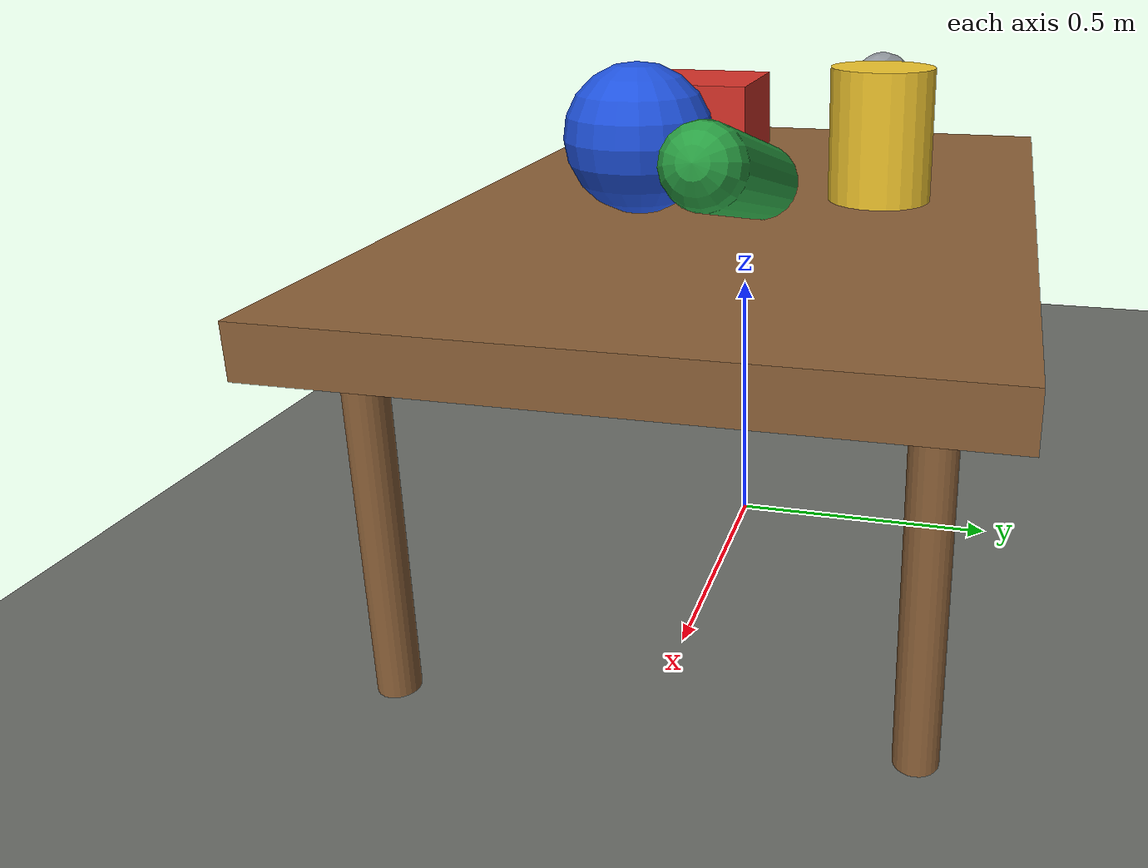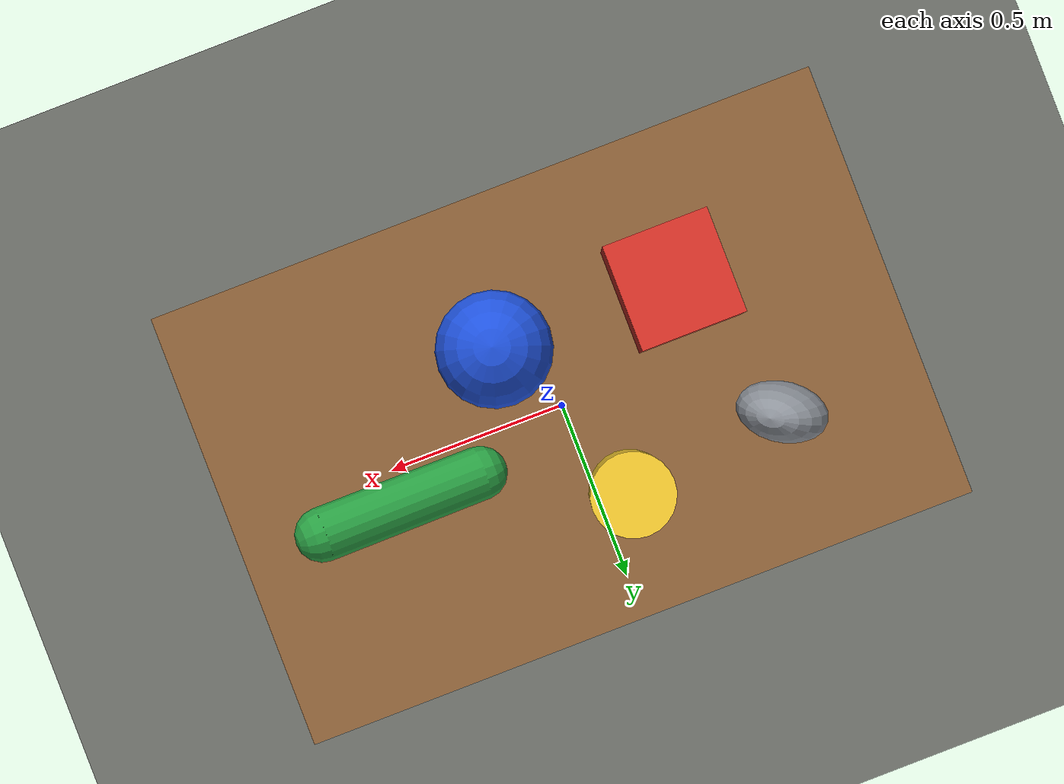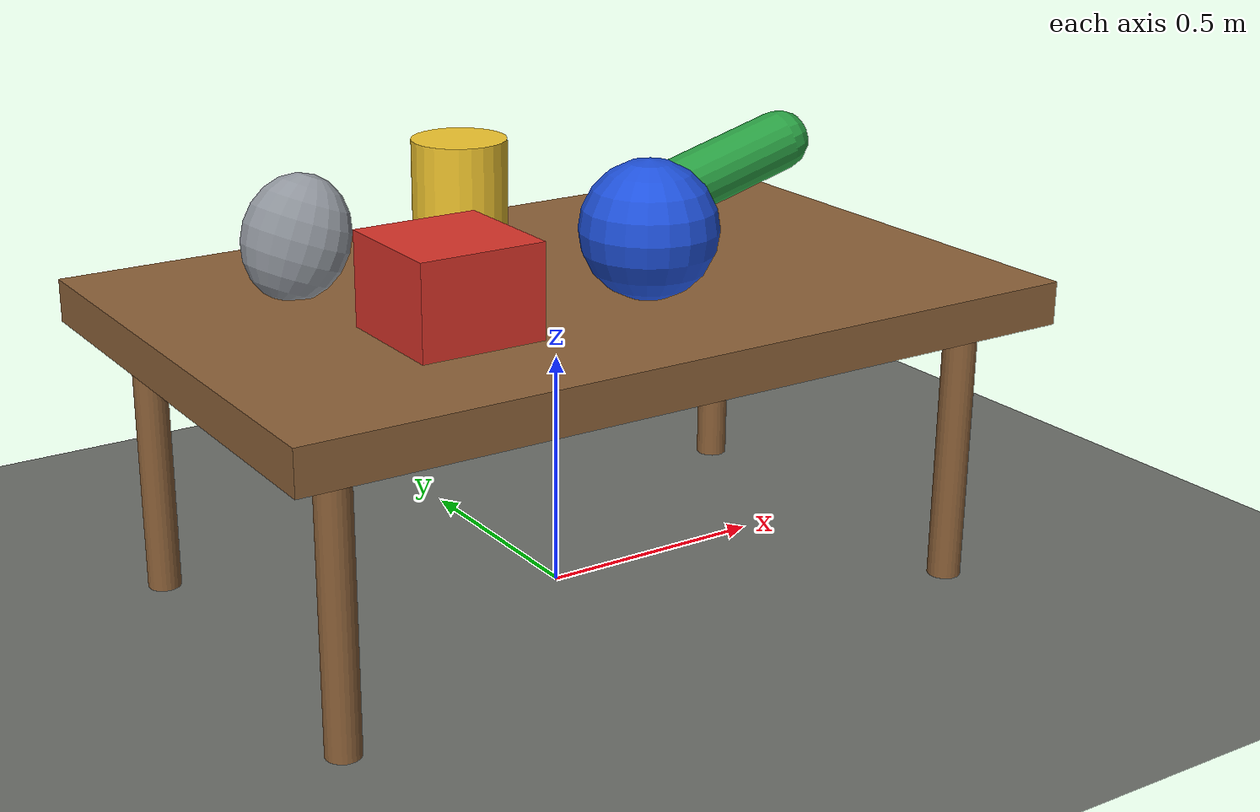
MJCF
<mujoco model="shadow_table_benchmark">
  <compiler angle="degree"/>

  <option timestep="0.002" gravity="0 0 -9.81"/>

  <visual>
    <headlight active="0"/>
    <map znear="0.01" zfar="12"/>
    <quality shadowsize="2048"/>
    <global offwidth="512" offheight="512"/>
  </visual>

  <asset>
    <material name="ground" rgba="0.42 0.43 0.41 1"/>
    <material name="table" rgba="0.55 0.38 0.22 1"/>
    <material name="red" rgba="0.85 0.20 0.16 1"/>
    <material name="blue" rgba="0.12 0.32 0.86 1"/>
    <material name="green" rgba="0.16 0.62 0.26 1"/>
    <material name="yellow" rgba="0.95 0.78 0.18 1"/>
    <material name="gray" rgba="0.55 0.57 0.60 1"/>
  </asset>

  <worldbody>
    <camera
      name="overview"
      pos="2.4 -2.8 1.8"
      xyaxes="0.759257 0.650791 0 -0.208913 0.243732 0.947074"
      fovy="45"
      resolution="120 160"
      output="rgb"/>

    <light
      name="left_overhead"
      pos="-1.0 -0.8 2.9"
      dir="0.35 0.25 -1"
      diffuse="0.82 0.78 0.70"
      specular="0.06 0.06 0.05"
      cutoff="65"
      castshadow="true"/>
    <light
      name="right_overhead"
      pos="1.0 0.7 2.6"
      dir="-0.35 -0.15 -1"
      diffuse="0.55 0.60 0.72"
      specular="0.04 0.05 0.06"
      cutoff="75"
      castshadow="true"/>
    <light
      name="rear_left_overhead"
      pos="-1.15 0.85 2.55"
      dir="0.35 -0.25 -1"
      diffuse="0.45 0.50 0.62"
      specular="0.04 0.04 0.05"
      cutoff="70"
      castshadow="true"/>
    <light
      name="front_right_overhead"
      pos="1.10 -0.90 2.75"
      dir="-0.40 0.25 -1"
      diffuse="0.62 0.56 0.48"
      specular="0.04 0.04 0.04"
      cutoff="70"
      castshadow="true"/>

    <geom name="ground" type="plane" pos="0 0 0" size="4 4 0.05" material="ground"/>

    <geom name="table_top" type="box" pos="0 0 0.62" size="0.85 0.55 0.045" material="table"/>
    <geom name="leg_front_left" type="cylinder" pos="-0.72 -0.42 0.31" size="0.035 0.31" material="table"/>
    <geom name="leg_front_right" type="cylinder" pos="0.72 -0.42 0.31" size="0.035 0.31" material="table"/>
    <geom name="leg_back_left" type="cylinder" pos="-0.72 0.42 0.31" size="0.035 0.31" material="table"/>
    <geom name="leg_back_right" type="cylinder" pos="0.72 0.42 0.31" size="0.035 0.31" material="table"/>

    <geom name="box_object" type="box" pos="-0.35 -0.18 0.76" size="0.13 0.13 0.095" material="red"/>
    <geom name="sphere_object" type="sphere" pos="0.10 -0.18 0.80" size="0.14" material="blue"/>
    <geom name="capsule_object" type="capsule" pos="0.43 0.08 0.81" size="0.065 0.20" euler="0 75 28" material="green"/>
    <geom name="cylinder_object" type="cylinder" pos="-0.08 0.25 0.79" size="0.10 0.13" material="yellow"/>
    <geom name="ellipsoid_object" type="ellipsoid" pos="-0.48 0.20 0.78" size="0.11 0.07 0.13" euler="0 20 -35" material="gray"/>
  </worldbody>
</mujoco>
